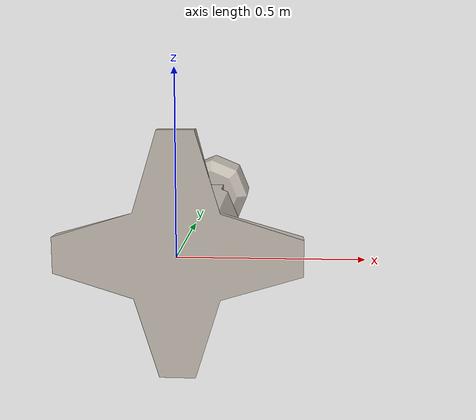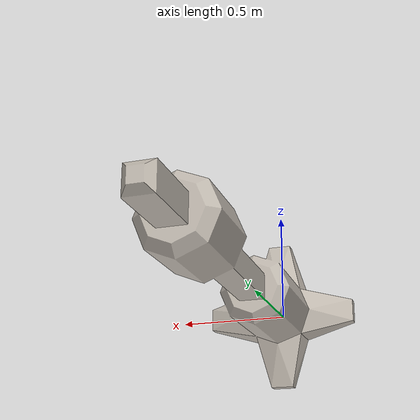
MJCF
<mujoco model="windturbine_tall">
  <default>
    <default class="visual">
      <geom group="2" type="mesh" contype="0" conaffinity="0" />
    </default>
    <default class="collision">
      <geom group="3" type="mesh" />
    </default>
  </default>
  <asset>
    <texture type="2d" name="windturbine_tall_spacebits_texture" file="spacebits_texture.png" />
    <material name="windturbine_tall_spacebits_texture" texture="windturbine_tall_spacebits_texture" specular="0.50196078" shininess="0.15999998099999999" />
    <mesh file="windturbine_tall.obj" name="windturbine_tall_windturbine_tall" />
  </asset>
  <worldbody>
    <body name="windturbine_tall">
      <geom material="windturbine_tall_spacebits_texture" mesh="windturbine_tall_windturbine_tall" class="visual" />
      <geom mesh="windturbine_tall_windturbine_tall" class="collision" />
    </body>
  </worldbody>
</mujoco>
